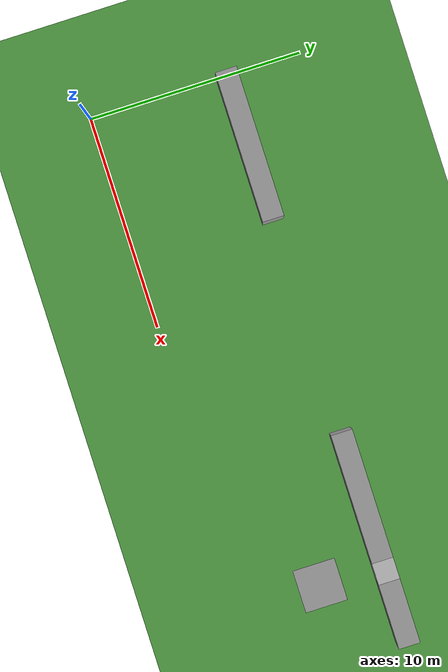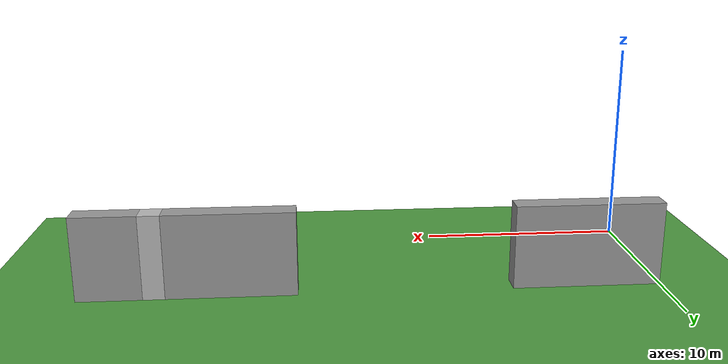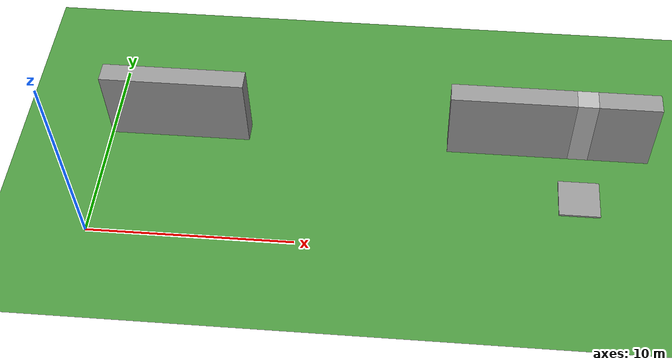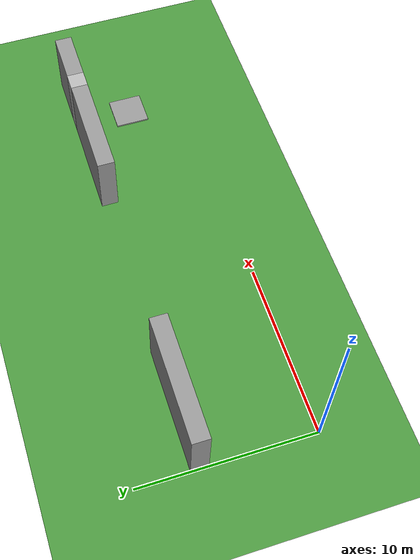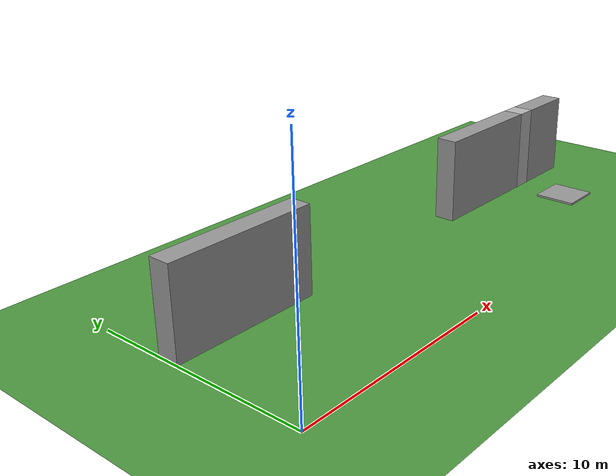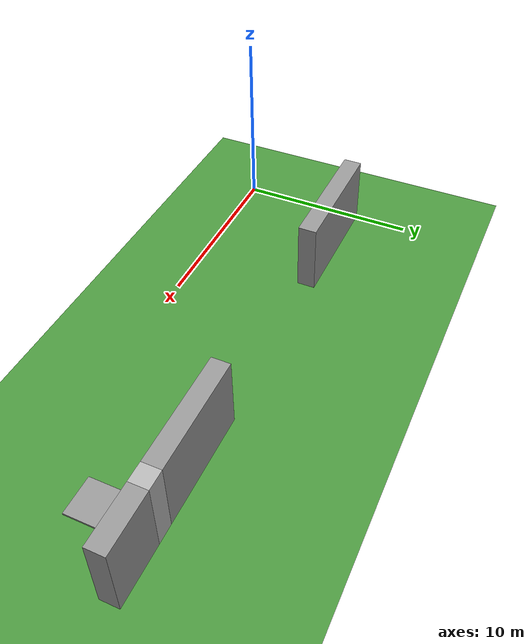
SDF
<sdf version="1.6">
 <world name="default">
  <light name="sun" type="directional">
   <pose>0 0 10 0 -0 0</pose>
   <diffuse>0.8 0.8 0.8 1</diffuse>
   <specular>0.1 0.1 0.1 1</specular>
   <attenuation>
    <range>1000</range>
    <constant>0.9</constant>
    <linear>0.01</linear>
    <quadratic>0.001</quadratic>
   </attenuation>
   <direction>-0.5 0.5 -1</direction>
  </light>
  <model name="ground_plane">
   <static>1</static>
   <link name="link">
    <collision name="collision">
     <geometry><plane><normal>0 0 1</normal><size>100 100</size></plane></geometry>
     <surface><friction><ode><mu>100</mu><mu2>50</mu2></ode></friction></surface>
    </collision>
    <visual name="visual">
     <cast_shadows>0</cast_shadows>
     <geometry><plane><normal>0 0 1</normal><size>100 100</size></plane></geometry>
     <material>
      <script><uri>file://media/materials/scripts/gazebo.material</uri><name>Gazebo/Grass</name></script>
     </material>
    </visual>
   </link>
  </model>
  <gravity>0 0 -9.8</gravity>
  <magnetic_field>6e-06 2.3e-05 -4.2e-05</magnetic_field>
  <atmosphere type="adiabatic"/>
  <physics name="default_physics" default="0" type="ode">
   <max_step_size>0.001</max_step_size>
   <real_time_factor>1</real_time_factor>
   <real_time_update_rate>1000</real_time_update_rate>
  </physics>
  <scene><ambient>0.4 0.4 0.4 1</ambient><background>0.7 0.7 0.7 1</background><shadows>1</shadows></scene>
  <spherical_coordinates>
   <surface_model>EARTH_WGS84</surface_model>
   <latitude_deg>0</latitude_deg>
   <longitude_deg>0</longitude_deg>
   <elevation>0</elevation>
   <heading_deg>0</heading_deg>
  </spherical_coordinates>
  <model name="wall">
   <pose>3.500000 6.500000 2 0 0 0</pose>
   <static>1</static>
   <link name="wall-link">
    <collision name="collision"><geometry><box><size>7 1 4</size></box></geometry></collision>
    <visual name="visual">
     <geometry><box><size>7 1 4</size></box></geometry>
     <material>
      <script><name>Gazebo/Grey</name><uri>file://media/materials/scripts/gazebo.material</uri></script>
     </material>
    </visual>
    <gravity>0</gravity>
   </link>
  </model>
  <model name="wall">
   <pose>20.000000 6.500000 2 0 0 0</pose>
   <static>1</static>
   <link name="wall-link">
    <collision name="collision"><geometry><box><size>6 1 4</size></box></geometry></collision>
    <visual name="visual">
     <geometry><box><size>6 1 4</size></box></geometry>
     <material>
      <script><name>Gazebo/Grey</name><uri>file://media/materials/scripts/gazebo.material</uri></script>
     </material>
    </visual>
    <gravity>0</gravity>
   </link>
  </model>
  <model name="wall">
   <pose>25.500000 6.500000 2 0 0 0</pose>
   <static>1</static>
   <link name="wall-link">
    <collision name="collision"><geometry><box><size>3 1 4</size></box></geometry></collision>
    <visual name="visual">
     <geometry><box><size>3 1 4</size></box></geometry>
     <material>
      <script><name>Gazebo/Grey</name><uri>file://media/materials/scripts/gazebo.material</uri></script>
     </material>
    </visual>
    <gravity>0</gravity>
   </link>
  </model>
  <model name="goal">
   <pose>23.5 3.5 0.05 0 -0 0</pose>
   <static>1</static>
   <link name="link">
    <collision name="collision"><geometry><box><size>2.0 2.0 0.1</size></box></geometry></collision>
    <visual name="visual">
     <geometry><box><size>2.0 2.0 0.1</size></box></geometry>
     <material>
      <script><name>Gazebo/Grey</name><uri>file://media/materials/scripts/gazebo.material</uri></script>
     </material>
    </visual>
   </link>
  </model>
  <include><uri>model://numberbox5</uri><pose>23.5 6.5 2 0 -0 0</pose></include>
 </world>
</sdf>

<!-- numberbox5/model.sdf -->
<sdf version="1.5">
  <model name="box">
    <static>false</static>
    <link name="base">
      <inertial>
        <mass>1</mass>
        <inertia>
          <ixx>0.166667</ixx>
          <ixy>0</ixy>
          <ixz>0</ixz>
          <iyy>0.166667</iyy>
          <iyz>0</iyz>
          <izz>0.166667</izz>
        </inertia>
      </inertial>
      <collision name="collision">
        <geometry>
            <box>
                <size>1 1 4</size>
            </box>
        </geometry>
      </collision>
      <visual name="visual">
        <geometry>
          <mesh>
            <uri>model://numberbox/meshes/number5.dae</uri>
          </mesh>
        </geometry>
      </visual>
    </link>
  </model>
</sdf>
